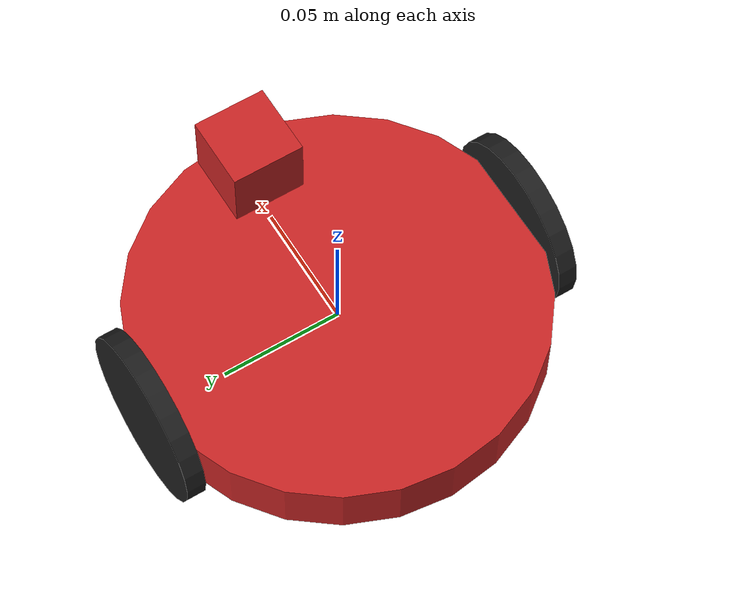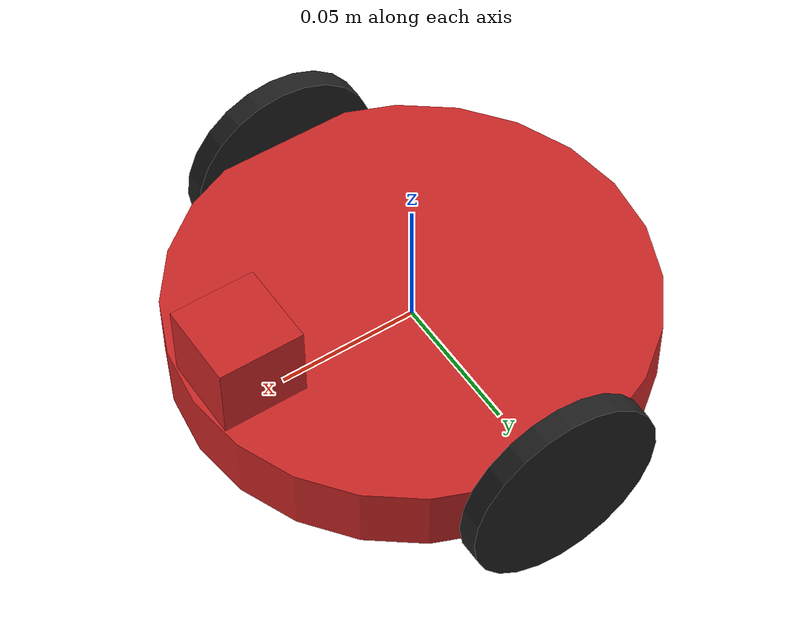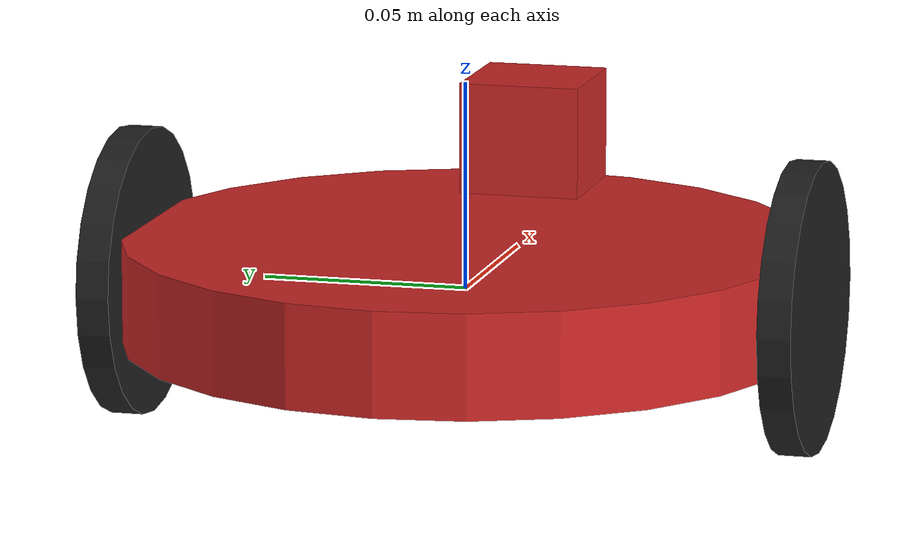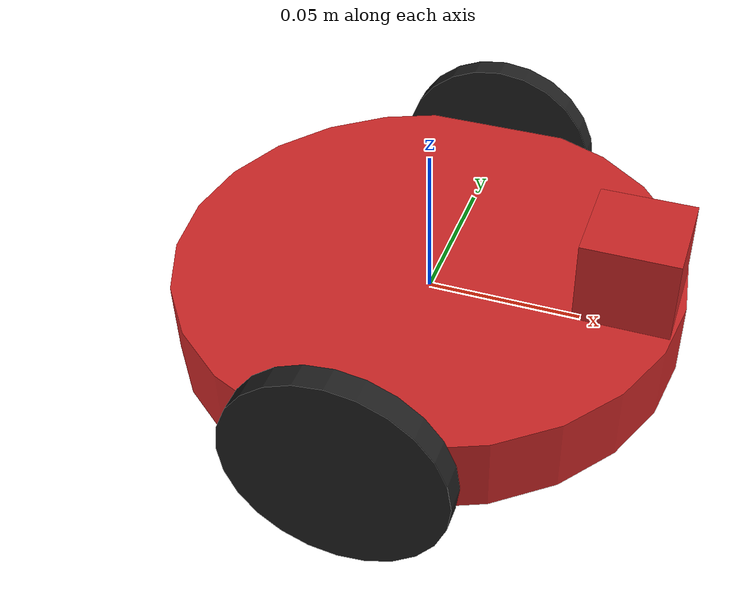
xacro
<?xml version="1.0"?>
<robot xmlns:xacro="http://www.ros.org/wiki/xacro" name="ceeriibot">

    <xacro:include filename="$(find ceerii_mobile_bot)/urdf/xacro/chasis.xacro"/>
    <xacro:include filename="$(find ceerii_mobile_bot)/urdf/xacro/wheels.xacro"/>
    <xacro:include filename="$(find ceerii_mobile_bot)/urdf/xacro/gazebo.xacro"/>
    <xacro:include filename="$(find ceerii_mobile_bot)/urdf/xacro/materials.xacro"/>

    <!-- Robot Base Footprint -->
    <link name="base_footprint"></link>

    <!-- Robot Chasis -->
    <xacro:chasis />

    <!-- Robot Wheels -->
    <xacro:wheel prefix="left" y_offset="${chasis_radius}" />
    <xacro:wheel prefix="right" y_offset="${-(chasis_radius)}" />
    <xacro:passive_wheel x_offset="0.065" z_offset="-0.02" />

</robot>

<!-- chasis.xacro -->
<robot xmlns:xacro="http://www.ros.org/wiki/xacro">

    <xacro:property name="head_mass" value="0.02" />
    <xacro:property name="head_width" value="0.03" />
    <xacro:property name="head_length" value="0.03" />
    <xacro:property name="head_height" value="0.03" />

    <xacro:property name="head_inertia_calc_ixx" value="${(1/12) * head_mass * ((head_height * head_height) + (head_length * head_length))}" />
    <xacro:property name="head_inertia_calc_iyy" value="${(1/12) * head_mass * ((head_width * head_width) + (head_height * head_height))}" />
    <xacro:property name="head_inertia_calc_izz" value="${(1/12) * head_mass * ((head_width * head_width) + (head_length * head_length))}" />

    <xacro:property name="chasis_mass" value="0.1" />
    <xacro:property name="chasis_radius" value="0.0825" />
    <xacro:property name="chasis_height" value="0.025" />

    <xacro:property name="chasis_inertia_calc" value="${(1/12) * chasis_mass * ((3 * (chasis_radius * chasis_radius)) + (chasis_height * chasis_height))}" />
    <xacro:property name="chasis_inertia_calc_izz" value="${(1/2) * chasis_mass * (chasis_radius * chasis_radius)}" />

    <xacro:macro name="chasis">

        <!-- Robot Head -->
        <link name="head">
            <visual>
                <geometry>
                    <box size="${head_length} ${head_width} ${head_height}" />
                </geometry>
                <material name="red" />
            </visual>
            <collision>
                <geometry>
                    <box size="${head_length} ${head_width} ${head_height}" />
                </geometry>
            </collision>
            <inertial>
                <mass value="${chasis_mass}"/>
                <inertia ixx="${head_inertia_calc_ixx}" ixy="0.0" ixz="0.0" iyy="${head_inertia_calc_iyy}" iyz="0.0" izz="${head_inertia_calc_izz}"/>
            </inertial>
        </link>
        <joint name="joint_chasis__head" type="fixed">
            <origin xyz="0.065 0 0.025" rpy="0 0 0" />
            <parent link="chasis"/>
            <child link="head"/>
        </joint>

        <!-- Main Robot Body  -->
        <link name="chasis">
            <visual>
                <geometry>
                    <cylinder radius="${chasis_radius}" length="${chasis_height}" />
                </geometry>
                <material name="red" />
            </visual>
            <collision>
                <geometry>
                    <cylinder radius="${chasis_radius}" length="${chasis_height}" />
                </geometry>
            </collision>
            <inertial>
                <mass value="${chasis_mass}"/>
                <inertia ixx="${chasis_inertia_calc}" ixy="0.0" ixz="0.0" iyy="${chasis_inertia_calc}" iyz="0.0" izz="${chasis_inertia_calc_izz}"/>
            </inertial>
        </link>
        <joint name="joint_base_footprint__chasis" type="fixed">
            <origin xyz="0 0 0" rpy="0 0 0" />
            <parent link="base_footprint"/>
            <child link="chasis"/>
        </joint>
    </xacro:macro>

</robot>

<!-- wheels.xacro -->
<robot xmlns:xacro="http://www.ros.org/wiki/xacro">

    <xacro:include filename="$(find ceerii_mobile_bot)/urdf/xacro/transmissions.xacro"/>

    <xacro:property name="wheel_mass" value="0.015" />
    <xacro:property name="wheel_radius" value="0.035" />
    <xacro:property name="wheel_height" value="0.008" />

    <xacro:property name="passive_wheel_mass" value="0.02" />
    <xacro:property name="passive_wheel_radius" value="0.01" />
    <xacro:property name="passive_wheel_holder_mass" value="0.02" />
    <xacro:property name="passive_wheel_holder_radius" value="0.01" />
    <xacro:property name="passive_wheel_holder_height" value="0.018" />

    <xacro:property name="passive_wheel_inertia_calc" value="${(2/5) * passive_wheel_mass * (passive_wheel_radius * passive_wheel_radius)}" />
    <xacro:property name="wheel_inertia_calc_izz" value="${(1/2) * wheel_mass * (wheel_radius * wheel_radius)}" />
    <xacro:property name="wheel_inertia_calc" value="${(1/12) * wheel_mass * ((3 * (wheel_radius * wheel_radius)) + (wheel_height * wheel_height))}" />
    <xacro:property name="passive_wheel_holder_inertia_calc_izz" value="${(1/2) * passive_wheel_holder_mass * (passive_wheel_holder_radius * passive_wheel_holder_radius)}" />
    <xacro:property name="passive_wheel_holder_inertia_calc" value="${(1/12) * passive_wheel_holder_mass * ((3 * (passive_wheel_holder_radius * passive_wheel_holder_radius)) + (passive_wheel_holder_height * passive_wheel_holder_height))}" />

    <xacro:macro name="wheel" params="prefix y_offset">
        <link name="${prefix}_wheel">
            <visual>
                <origin xyz="0 0 0" rpy="${pi/2} 0 0" />
                <geometry>
                    <cylinder radius="${wheel_radius}" length="${wheel_height}" />
                </geometry>
                <material name="black" />
            </visual>
            <collision>
                <origin xyz="0 0 0" rpy="${pi/2} 0 0" />
                <geometry>
                    <cylinder radius="${wheel_radius}" length="${wheel_height}" />
                </geometry>
            </collision>
            <inertial>
                <mass value="${wheel_mass}"/>
                <inertia ixx="${wheel_inertia_calc}" ixy="0.0" ixz="0.0" iyy="${wheel_inertia_calc}" iyz="0.0" izz="${wheel_inertia_calc_izz}"/>
            </inertial>
        </link>

        <joint name="joint_chasis__${prefix}_wheel" type="continuous">
            <parent link="chasis"/>
            <child link="${prefix}_wheel"/>
            <origin xyz="0 ${y_offset} 0" rpy="0 0 0" />
            <axis xyz="0 1 0"/>
        </joint>

        <!-- Robot Joints' Transmission -->
        <xacro:wheel_transmission wheelJointName="joint_chasis__${prefix}_wheel"  />
    </xacro:macro>

    <xacro:macro name="passive_wheel" params="z_offset x_offset">
        <link name="passive_wheel_holder">
            <visual>
                <origin xyz="0 0 ${z_offset}" />
                <geometry>
                    <cylinder radius="${passive_wheel_holder_radius}" length="${passive_wheel_holder_height}" />
                </geometry>
                <material name="black"></material>
            </visual>
            <collision>
                <origin xyz="0 0 ${z_offset}" />
                <geometry>
                    <cylinder radius="${passive_wheel_holder_radius}" length="${passive_wheel_holder_height}" />
                </geometry>
            </collision>
            <inertial>
                <mass value="${passive_wheel_holder_mass}"/>
                <inertia ixx="${passive_wheel_holder_inertia_calc}" ixy="0.0" ixz="0.0" iyy="${passive_wheel_holder_inertia_calc}" iyz="0.0" izz="${passive_wheel_holder_inertia_calc_izz}"/>
            </inertial>
        </link>

        <joint name="joint_chasis__passive_wheel_holder" type="fixed">
            <origin xyz="${x_offset} 0 0" rpy="0 0 0" />
            <parent link="chasis"/>
            <child link="passive_wheel_holder"/>
        </joint>

        <link name="passive_wheel">
            <visual>
                <geometry>
                    <sphere radius="${passive_wheel_radius}" />
                </geometry>
                <material name="black"></material>
            </visual>
            <collision>
                <geometry>
                    <sphere radius="${passive_wheel_radius}" />
                </geometry>
            </collision>
            <inertial>
                <mass value="${passive_wheel_mass}"/>
                 <inertia ixx="${passive_wheel_inertia_calc}" ixy="0.0" ixz="0.0" iyy="${passive_wheel_inertia_calc}" iyz="0.0" izz="${passive_wheel_inertia_calc}"/>
            </inertial>
        </link>

        <joint name="joint_passive_wheel_holder__passive_wheel" type="fixed">
            <origin xyz="0 0 ${z_offset - 0.005}" rpy="0 0 0" />
            <parent link="passive_wheel_holder"/>
            <child link="passive_wheel"/>
        </joint>
    </xacro:macro>
</robot>
